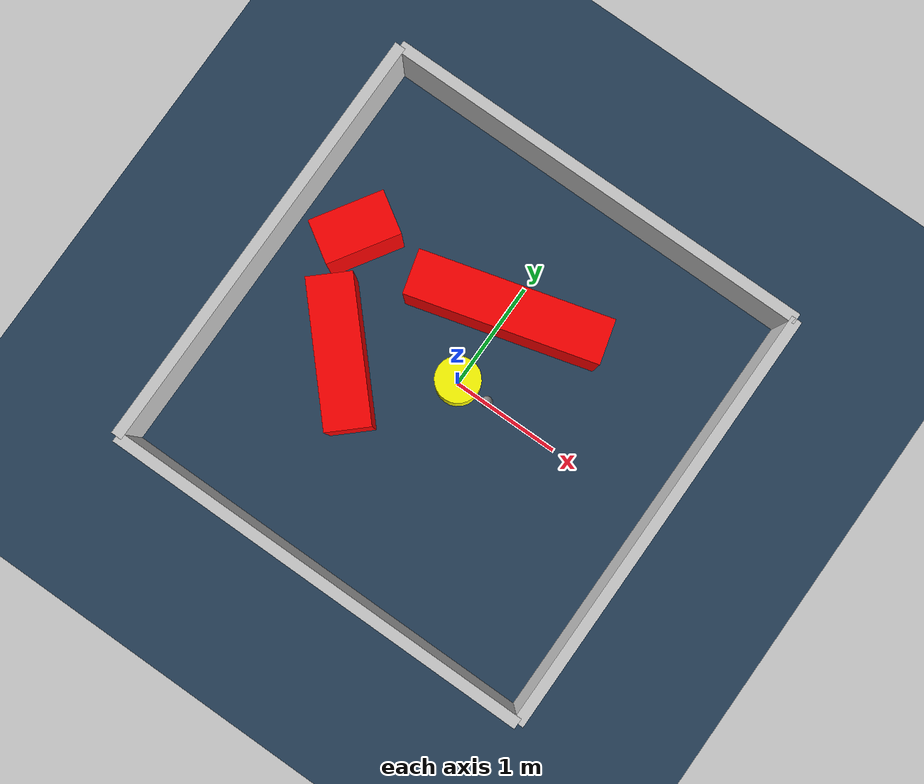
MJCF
<?xml version="1.0" ?>
<mujoco model="generated_environment">
  <option timestep="0.01" integrator="RK4" cone="elliptic"/>
  <default>
    <geom density="1"/>
  </default>
  <asset>
    <texture builtin="gradient" height="3072" rgb1="0.3 0.5 0.7" rgb2="0 0 0" type="skybox" width="512"/>
    <texture builtin="checker" height="300" mark="edge" markrgb="0.8 0.8 0.8" name="groundplane" rgb1="0.2 0.3 0.4" rgb2="0.1 0.2 0.3" type="2d" width="300"/>
    <material name="groundplane" reflectance="0.2" texrepeat="5 5" texture="groundplane" texuniform="true"/>
    <material name="robot" rgba="0.0 1.0 0.0 1"/>
  </asset>
  <worldbody>
    <light dir="0 0 -1" directional="true" pos="0 0 1.5"/>
    <geom condim="4" friction="1.0 0.005 0.001" material="groundplane" name="floor" size="0 0 0.05" type="plane"/>
    <body name="walls">
      <geom name="wall_1" condim="4" pos="-2.0 0.0 0.3" rgba="0.800000011920929 0.800000011920929 0.800000011920929 1.0" size="0.05 2.0 0.3" type="box"/>
      <geom name="wall_2" condim="4" pos="2.0 0.0 0.3" rgba="0.800000011920929 0.800000011920929 0.800000011920929 1.0" size="0.05 2.0 0.3" type="box"/>
      <geom name="wall_3" condim="4" pos="0.0 -2.0 0.3" rgba="0.800000011920929 0.800000011920929 0.800000011920929 1.0" size="2.0 0.05 0.3" type="box"/>
      <geom name="wall_4" condim="4" pos="0.0 2.0 0.3" rgba="0.800000011920929 0.800000011920929 0.800000011920929 1.0" size="2.0 0.05 0.3" type="box"/>
    </body>
    <body name="robot">
      <joint name="joint_x" type="slide" pos="0 0 0" axis="1 0 0"/>
      <joint name="joint_y" type="slide" pos="0 0 0" axis="0 1 0"/>
      <geom name="robot" type="sphere" pos="0.3 0.0 0.2" size="0.05" mass="5." friction="1.0 0.005 0.0001" condim="4" rgba="0.5 0.5 0.5 1.0"/>
      <site name="sensor_ball"/>
    </body>
    <body name="obstacle_movable_1">
      <geom name="obstacle_movable_1" condim="4" pos="0.0 0.0 0.2" euler="0 0 0.0" friction="1.0 0.005 0.001" rgba="1.0 1.0 0.0 1.0" size="0.2 0.2 0.0" type="cylinder" mass="0.1"/>
      <joint type="free"/>
    </body>
    <body name="obstacle_2_static">
      <geom name="obstacle_2_static" condim="4" pos="-1.4182935350225452 0.5292610270854563 0.3" euler="0 0 237.67254949790038" friction="1.0 0.005 0.001" rgba="1 0 0 1" size="0.3372503521876878 0.2 0.3" type="box"/>
    </body>
    <body name="obstacle_3_static">
      <geom name="obstacle_3_static" condim="4" pos="-0.9267130943549731 -0.3894633327882915 0.3" euler="0 0 132.50426627507915" friction="1.0 0.005 0.001" rgba="1 0 0 1" size="0.6491473340042448 0.2 0.3" type="box"/>
    </body>
    <body name="obstacle_4_static">
      <geom name="obstacle_4_static" condim="4" pos="0.0058378135093817285 0.7225835619460732 0.3" euler="0 0 195.1790925346033" friction="1.0 0.005 0.001" rgba="1 0 0 1" size="0.8624888890164393 0.2 0.3" type="box"/>
    </body>
  </worldbody>
  <actuator>
    <motor name="actuator_x" joint="joint_x" gear="1" ctrlrange="-1 1"/>
    <motor name="actuator_y" joint="joint_y" gear="1" ctrlrange="-1 1"/>
  </actuator>
</mujoco>
